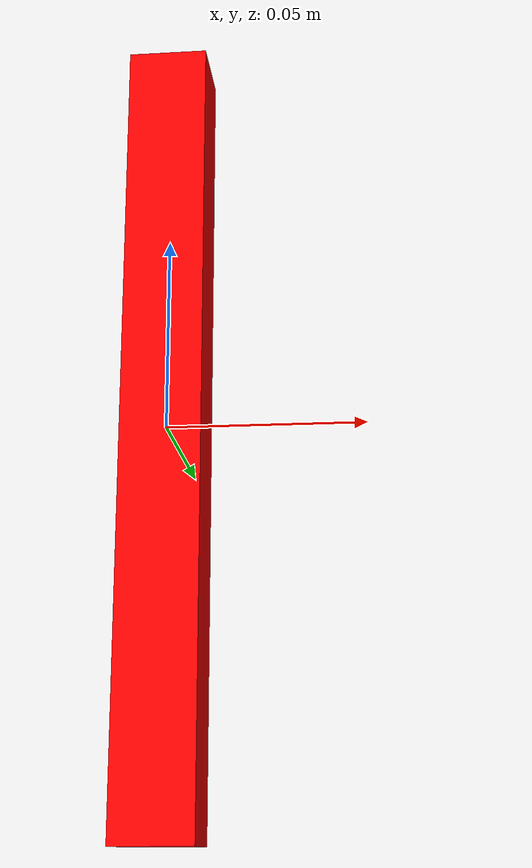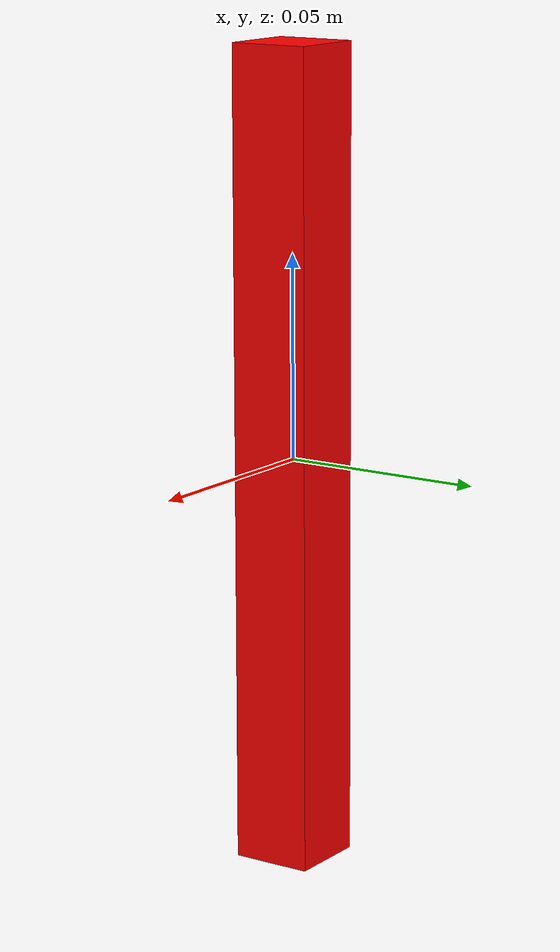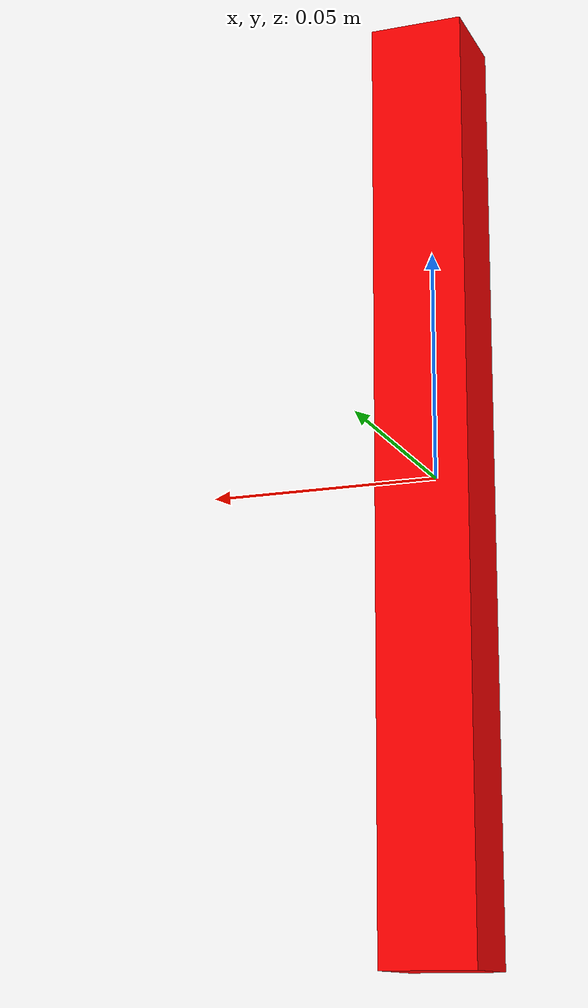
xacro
<?xml version = "1.0"?>

<robot name="red_cuboid" xmlns:xacro="http://www.ros.org/wiki/xacro">

    <link name="red_cuboid">
        <visual>
            <geometry>
                <box size="0.02 0.02 0.2"/>
            </geometry>
            <material name="red">
                <color rgba="1.0 0.0 0.0 1.0"/>
            </material>
        </visual>
        <collision>
            <geometry>
                <box size="0.02 0.02 0.2"/>
            </geometry>
        </collision>
        <inertial>
            <mass value="0.1"/>
            <origin xyz="0 0 0" rpy="0 0 0"/>
            <inertia ixx="0.00033333" ixy="0.0" ixz="0.0" iyy="0.00033333" iyz="0.0" izz="0.00000667"/>
        </inertial>

    </link>

  <gazebo reference="red_cuboid" >
        <material>Gazebo/Red</material>
        <surface>
            <friction>
                <ode>
                    <mu>4.0</mu>
                    <mu2>1.0</mu2>
                </ode>
            </friction>
            <bounce>
                <restitution_coefficient>0.0</restitution_coefficient>
                <threshold>1000.0</threshold>
            </bounce>
            <contact>
                <ode>
                    <kp>1.0</kp>
                    <kd>1.0</kd>
                </ode>
            </contact>
        </surface>
  </gazebo>
  <gazebo reference="red_cuboid" >
    <plugin name="gazebo_grasp_fix" filename="libgazebo_grasp_fix.so">
        <arm>
            <arm_name>red_cube</arm_name>
            <palm_link>red_cuboid</palm_link>
        </arm>
        <forces_angle_tolerance>100</forces_angle_tolerance>
        <update_rate>4</update_rate>
        <grip_count_threshold>4</grip_count_threshold>
        <max_grip_count>8</max_grip_count>
        <release_tolerance>0.005</release_tolerance>
        <disable_collisions_on_attach>false</disable_collisions_on_attach>
    </plugin>
  </gazebo>

</robot>
